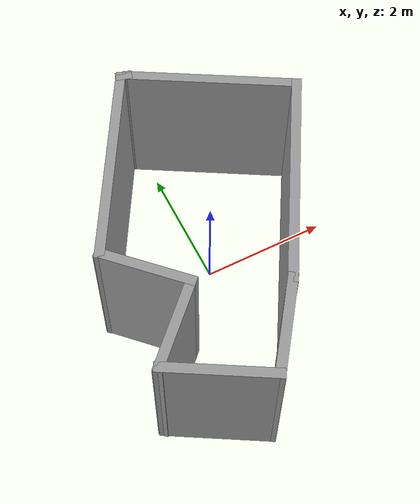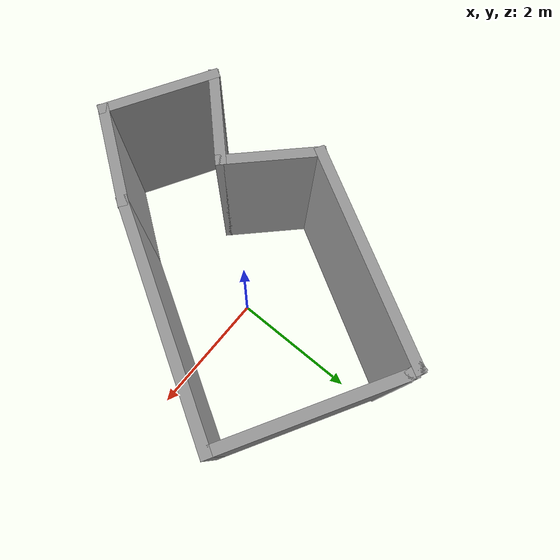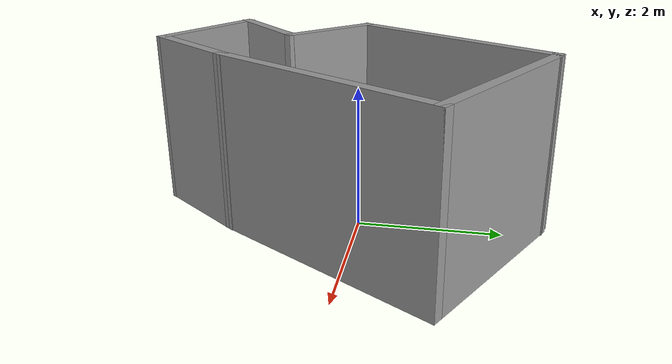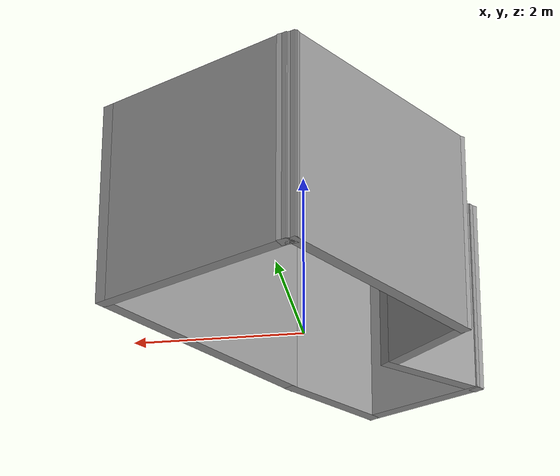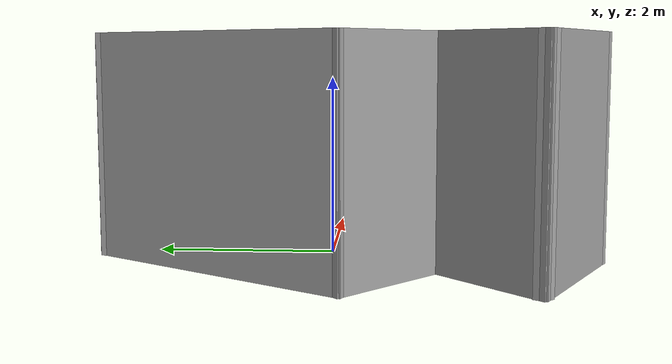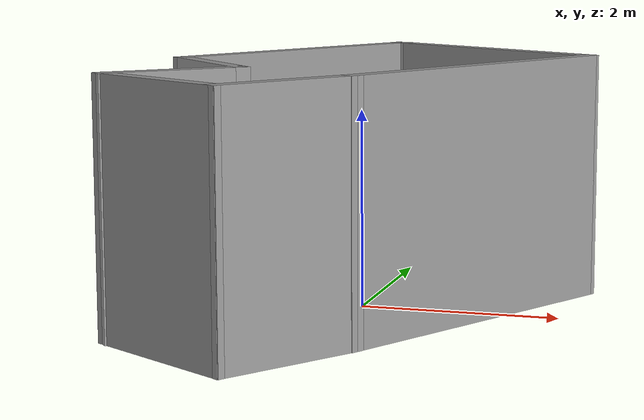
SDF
<?xml version='1.0'?>
<sdf version='1.7'>
  <model name='my_room'>
    <pose>0.123392 -0.186036 0 0 -0 0</pose>
    <link name='Wall_10'>
      <collision name='Wall_10_Collision'>
        <geometry>
          <box>
            <size>1.75 0.15 2.5</size>
          </box>
        </geometry>
        <pose>0 0 1.25 0 -0 0</pose>
      </collision>
      <visual name='Wall_10_Visual'>
        <pose>0 0 1.25 0 -0 0</pose>
        <geometry>
          <box>
            <size>1.75 0.15 2.5</size>
          </box>
        </geometry>
        <material>
          <script>
            <uri>file://media/materials/scripts/gazebo.material</uri>
            <name>Gazebo/Grey</name>
          </script>
          <ambient>1 1 1 1</ambient>
        </material>
        <meta>
          <layer>0</layer>
        </meta>
      </visual>
      <pose>-1.2545 -2.29583 0 0 -0 -0.523599</pose>
    </link>
    <link name='Wall_11'>
      <collision name='Wall_11_Collision'>
        <geometry>
          <box>
            <size>1.58632 0.15 2.5</size>
          </box>
        </geometry>
        <pose>0 0 1.25 0 -0 0</pose>
      </collision>
      <visual name='Wall_11_Visual'>
        <pose>0 0 1.25 0 -0 0</pose>
        <geometry>
          <box>
            <size>1.58632 0.15 2.5</size>
          </box>
        </geometry>
        <material>
          <script>
            <uri>file://media/materials/scripts/gazebo.material</uri>
            <name>Gazebo/Grey</name>
          </script>
          <ambient>1 1 1 1</ambient>
        </material>
        <meta>
          <layer>0</layer>
        </meta>
      </visual>
      <pose>-0.142873 -2.11243 0 0 -0 0.948173</pose>
    </link>
    <link name='Wall_3'>
      <collision name='Wall_3_Collision'>
        <geometry>
          <box>
            <size>3.5 0.15 2.5</size>
          </box>
        </geometry>
        <pose>0 0 1.25 0 -0 0</pose>
      </collision>
      <visual name='Wall_3_Visual'>
        <pose>0 0 1.25 0 -0 0</pose>
        <geometry>
          <box>
            <size>3.5 0.15 2.5</size>
          </box>
        </geometry>
        <material>
          <script>
            <uri>file://media/materials/scripts/gazebo.material</uri>
            <name>Gazebo/Grey</name>
          </script>
          <ambient>1 1 1 1</ambient>
        </material>
        <meta>
          <layer>0</layer>
        </meta>
      </visual>
      <pose>1.11344 -0.078435 0 0 -0 1.0472</pose>
    </link>
    <link name='Wall_5'>
      <collision name='Wall_5_Collision'>
        <geometry>
          <box>
            <size>2.75 0.15 2.5</size>
          </box>
        </geometry>
        <pose>0 0 1.25 0 -0 0</pose>
      </collision>
      <visual name='Wall_5_Visual'>
        <pose>0 0 1.25 0 -0 0</pose>
        <geometry>
          <box>
            <size>2.75 0.15 2.5</size>
          </box>
        </geometry>
        <material>
          <script>
            <uri>file://media/materials/scripts/gazebo.material</uri>
            <name>Gazebo/Grey</name>
          </script>
          <ambient>1 1 1 1</ambient>
        </material>
        <meta>
          <layer>0</layer>
        </meta>
      </visual>
      <pose>0.825103 2.02216 0 0 -0 2.61799</pose>
    </link>
    <link name='Wall_6'>
      <collision name='Wall_6_Collision'>
        <geometry>
          <box>
            <size>0.25 0.15 2.5</size>
          </box>
        </geometry>
        <pose>0 0 1.25 0 -0 0</pose>
      </collision>
      <visual name='Wall_6_Visual'>
        <pose>0 0 1.25 0 -0 0</pose>
        <geometry>
          <box>
            <size>0.25 0.15 2.5</size>
          </box>
        </geometry>
        <material>
          <script>
            <uri>file://media/materials/scripts/gazebo.material</uri>
            <name>Gazebo/Grey</name>
          </script>
          <ambient>1 1 1 1</ambient>
        </material>
        <meta>
          <layer>0</layer>
        </meta>
      </visual>
      <pose>-0.349026 2.6851 0 0 -0 2.87979</pose>
    </link>
    <link name='Wall_7'>
      <collision name='Wall_7_Collision'>
        <geometry>
          <box>
            <size>3.25 0.15 2.5</size>
          </box>
        </geometry>
        <pose>0 0 1.25 0 -0 0</pose>
      </collision>
      <visual name='Wall_7_Visual'>
        <pose>0 0 1.25 0 -0 0</pose>
        <geometry>
          <box>
            <size>3.25 0.15 2.5</size>
          </box>
        </geometry>
        <material>
          <script>
            <uri>file://media/materials/scripts/gazebo.material</uri>
            <name>Gazebo/Grey</name>
          </script>
          <ambient>1 1 1 1</ambient>
        </material>
        <meta>
          <layer>0</layer>
        </meta>
      </visual>
      <pose>-1.17232 1.3557 0 0 -0 -2.0944</pose>
    </link>
    <link name='Wall_8'>
      <collision name='Wall_8_Collision'>
        <geometry>
          <box>
            <size>1.5 0.15 2.5</size>
          </box>
        </geometry>
        <pose>0 0 1.25 0 -0 0</pose>
      </collision>
      <visual name='Wall_8_Visual'>
        <pose>0 0 1.25 0 -0 0</pose>
        <geometry>
          <box>
            <size>1.5 0.15 2.5</size>
          </box>
        </geometry>
        <material>
          <script>
            <uri>file://media/materials/scripts/gazebo.material</uri>
            <name>Gazebo/Grey</name>
          </script>
          <ambient>1 1 1 1</ambient>
        </material>
        <meta>
          <layer>0</layer>
        </meta>
      </visual>
      <pose>-1.47002 -0.463936 0 0 -0 -0.785398</pose>
    </link>
    <link name='Wall_9'>
      <collision name='Wall_9_Collision'>
        <geometry>
          <box>
            <size>1.5 0.15 2.5</size>
          </box>
        </geometry>
        <pose>0 0 1.25 0 -0 0</pose>
      </collision>
      <visual name='Wall_9_Visual'>
        <pose>0 0 1.25 0 -0 0</pose>
        <geometry>
          <box>
            <size>1.5 0.15 2.5</size>
          </box>
        </geometry>
        <material>
          <script>
            <uri>file://media/materials/scripts/gazebo.material</uri>
            <name>Gazebo/Grey</name>
          </script>
          <ambient>1 1 1 1</ambient>
        </material>
        <meta>
          <layer>0</layer>
        </meta>
      </visual>
      <pose>-1.47002 -1.41853 0 0 -0 -2.35619</pose>
    </link>
    <static>1</static>
  </model>
</sdf>
